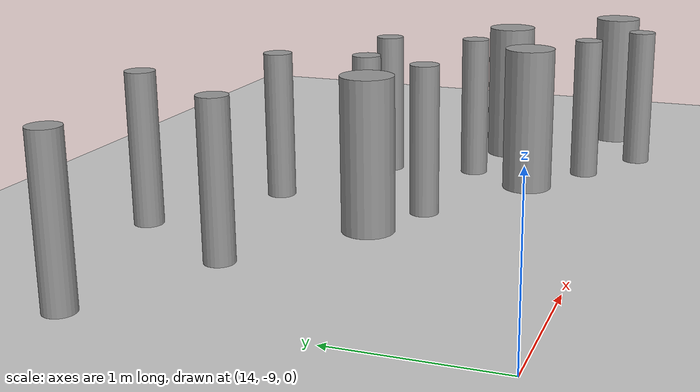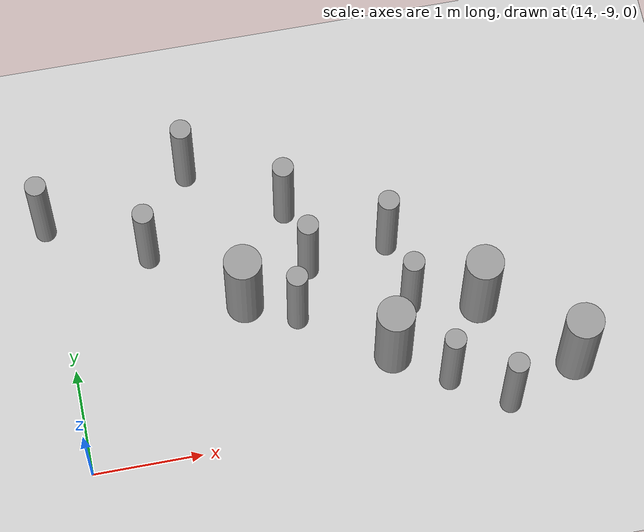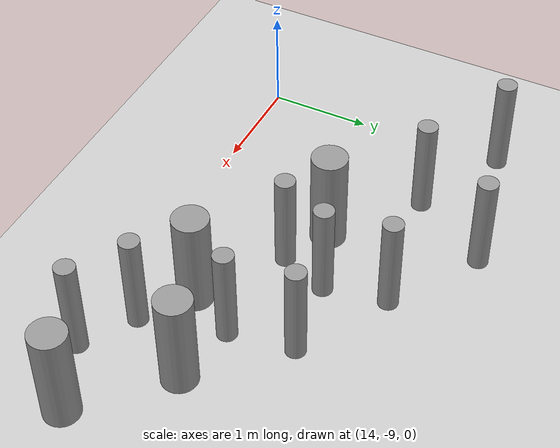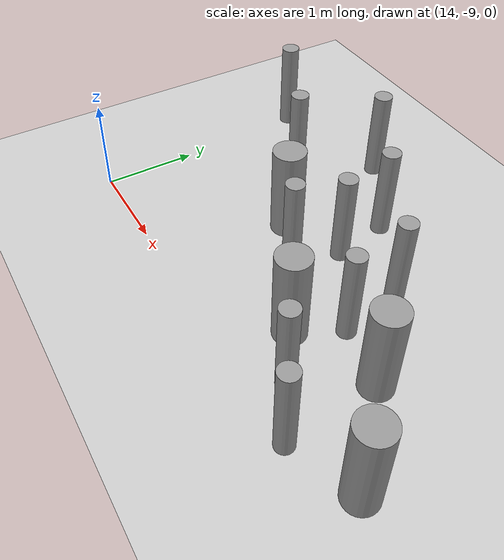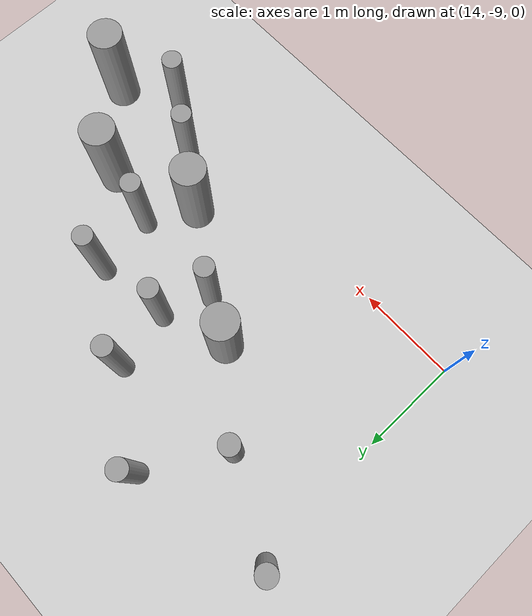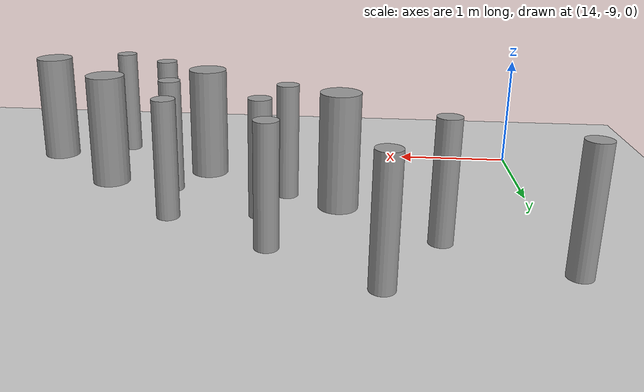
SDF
<sdf version="1.6">
 <world name="default">
  <model name="ground_plane">
   <static>1</static>
   <link name="link">
    <collision name="collision">
     <geometry><plane><normal>0 0 1</normal><size>100 100</size></plane></geometry>
     <surface><friction><ode><mu>100</mu><mu2>50</mu2></ode></friction></surface>
    </collision>
    <visual name="visual">
     <cast_shadows>0</cast_shadows>
     <geometry><plane><normal>0 0 1</normal><size>100 100</size></plane></geometry>
     <material>
      <script><uri>file://media/materials/scripts/gazebo.material</uri><name>Gazebo/Grey</name></script>
     </material>
    </visual>
   </link>
  </model>
  <model name="cyl_wall_clone_clone_1_clone_0">
   <link name="link_0">
    <pose>-2.73893 -0.366465 0 0 -0 0</pose>
    <inertial>
     <mass>0.0374993</mass>
     <inertia>
      <ixx>0.00321281</ixx>
      <ixy>0</ixy>
      <ixz>0</ixz>
      <iyy>0.00321281</iyy>
      <iyz>0</iyz>
      <izz>0.000175774</izz>
     </inertia>
    </inertial>
    <visual name="visual">
     <geometry><cylinder><radius>0.0968661</radius><length>1</length></cylinder></geometry>
     <material>
      <lighting>1</lighting>
      <script><uri>file://media/materials/scripts/gazebo.material</uri><name>Gazebo/Grey</name></script>
      <ambient>0.3 0.3 0.3 1</ambient>
      <diffuse>0.7 0.7 0.7 1</diffuse>
      <specular>0.01 0.01 0.01 1</specular>
      <emissive>0 0 0 1</emissive>
     </material>
    </visual>
    <collision name="collision">
     <geometry><cylinder><radius>0.096866</radius><length>1</length></cylinder></geometry>
     <surface>
      <friction>
       <ode><mu>1</mu><mu2>1</mu2><fdir1>0 0 0</fdir1><slip1>0</slip1><slip2>0</slip2></ode>
       <torsional>
        <coefficient>1</coefficient>
        <patch_radius>0</patch_radius>
        <surface_radius>0</surface_radius>
        <use_patch_radius>1</use_patch_radius>
        <ode><slip>0</slip></ode>
       </torsional>
      </friction>
      <bounce><restitution_coefficient>0</restitution_coefficient><threshold>1e+06</threshold></bounce>
      <contact>
       <collide_without_contact>0</collide_without_contact>
       <collide_without_contact_bitmask>1</collide_without_contact_bitmask>
       <collide_bitmask>1</collide_bitmask>
       <ode>
        <soft_cfm>0</soft_cfm>
        <soft_erp>0.2</soft_erp>
        <kp>1e+13</kp>
        <kd>1</kd>
        <max_vel>0.01</max_vel>
        <min_depth>0</min_depth>
       </ode>
       <bullet>
        <split_impulse>1</split_impulse>
        <split_impulse_penetration_threshold>-0.01</split_impulse_penetration_threshold>
        <soft_cfm>0</soft_cfm>
        <soft_erp>0.2</soft_erp>
        <kp>1e+13</kp>
        <kd>1</kd>
       </bullet>
      </contact>
     </surface>
    </collision>
   </link>
   <link name="link_0_clone">
    <pose>-1.73893 0.61877 0 0 -0 0</pose>
    <inertial>
     <mass>0.0374993</mass>
     <inertia>
      <ixx>0.00321281</ixx>
      <ixy>0</ixy>
      <ixz>0</ixz>
      <iyy>0.00321281</iyy>
      <iyz>0</iyz>
      <izz>0.000175774</izz>
     </inertia>
    </inertial>
    <visual name="visual">
     <geometry><cylinder><radius>0.0968661</radius><length>1</length></cylinder></geometry>
     <material>
      <lighting>1</lighting>
      <script><uri>file://media/materials/scripts/gazebo.material</uri><name>Gazebo/Grey</name></script>
      <ambient>0.3 0.3 0.3 1</ambient>
      <diffuse>0.7 0.7 0.7 1</diffuse>
      <specular>0.01 0.01 0.01 1</specular>
      <emissive>0 0 0 1</emissive>
      <shader type="pixel"/>
     </material>
    </visual>
    <collision name="collision">
     <geometry><cylinder><radius>0.096866</radius><length>1</length></cylinder></geometry>
     <surface>
      <friction>
       <ode><mu>1</mu><mu2>1</mu2><fdir1>0 0 0</fdir1><slip1>0</slip1><slip2>0</slip2></ode>
       <torsional>
        <coefficient>1</coefficient>
        <patch_radius>0</patch_radius>
        <surface_radius>0</surface_radius>
        <use_patch_radius>1</use_patch_radius>
        <ode><slip>0</slip></ode>
       </torsional>
      </friction>
      <bounce><restitution_coefficient>0</restitution_coefficient><threshold>1e+06</threshold></bounce>
      <contact>
       <collide_without_contact>0</collide_without_contact>
       <collide_without_contact_bitmask>1</collide_without_contact_bitmask>
       <collide_bitmask>1</collide_bitmask>
       <ode>
        <soft_cfm>0</soft_cfm>
        <soft_erp>0.2</soft_erp>
        <kp>1e+13</kp>
        <kd>1</kd>
        <max_vel>0.01</max_vel>
        <min_depth>0</min_depth>
       </ode>
       <bullet>
        <split_impulse>1</split_impulse>
        <split_impulse_penetration_threshold>-0.01</split_impulse_penetration_threshold>
        <soft_cfm>0</soft_cfm>
        <soft_erp>0.2</soft_erp>
        <kp>1e+13</kp>
        <kd>1</kd>
       </bullet>
      </contact>
     </surface>
    </collision>
   </link>
   <link name="link_0_clone_clone">
    <pose>-0.327073 0.143919 0 0 -0 0</pose>
    <inertial>
     <mass>0.0374993</mass>
     <inertia>
      <ixx>0.00321281</ixx>
      <ixy>0</ixy>
      <ixz>0</ixz>
      <iyy>0.00321281</iyy>
      <iyz>0</iyz>
      <izz>0.000175774</izz>
     </inertia>
    </inertial>
    <visual name="visual">
     <geometry><cylinder><radius>0.0968661</radius><length>1</length></cylinder></geometry>
     <material>
      <lighting>1</lighting>
      <script><uri>file://media/materials/scripts/gazebo.material</uri><name>Gazebo/Grey</name></script>
      <ambient>0.3 0.3 0.3 1</ambient>
      <diffuse>0.7 0.7 0.7 1</diffuse>
      <specular>0.01 0.01 0.01 1</specular>
      <emissive>0 0 0 1</emissive>
      <shader type="pixel"/>
     </material>
    </visual>
    <collision name="collision">
     <geometry><cylinder><radius>0.096866</radius><length>1</length></cylinder></geometry>
     <surface>
      <friction>
       <ode><mu>1</mu><mu2>1</mu2><fdir1>0 0 0</fdir1><slip1>0</slip1><slip2>0</slip2></ode>
       <torsional>
        <coefficient>1</coefficient>
        <patch_radius>0</patch_radius>
        <surface_radius>0</surface_radius>
        <use_patch_radius>1</use_patch_radius>
        <ode><slip>0</slip></ode>
       </torsional>
      </friction>
      <bounce><restitution_coefficient>0</restitution_coefficient><threshold>1e+06</threshold></bounce>
      <contact>
       <collide_without_contact>0</collide_without_contact>
       <collide_without_contact_bitmask>1</collide_without_contact_bitmask>
       <collide_bitmask>1</collide_bitmask>
       <ode>
        <soft_cfm>0</soft_cfm>
        <soft_erp>0.2</soft_erp>
        <kp>1e+13</kp>
        <kd>1</kd>
        <max_vel>0.01</max_vel>
        <min_depth>0</min_depth>
       </ode>
       <bullet>
        <split_impulse>1</split_impulse>
        <split_impulse_penetration_threshold>-0.01</split_impulse_penetration_threshold>
        <soft_cfm>0</soft_cfm>
        <soft_erp>0.2</soft_erp>
        <kp>1e+13</kp>
        <kd>1</kd>
       </bullet>
      </contact>
     </surface>
    </collision>
   </link>
   <link name="link_0_clone_clone_0">
    <pose>1.26107 -0.419359 0 0 -0 0</pose>
    <inertial>
     <mass>0.0374993</mass>
     <inertia>
      <ixx>0.00321281</ixx>
      <ixy>0</ixy>
      <ixz>0</ixz>
      <iyy>0.00321281</iyy>
      <iyz>0</iyz>
      <izz>0.000175774</izz>
     </inertia>
    </inertial>
    <visual name="visual">
     <geometry><cylinder><radius>0.0968661</radius><length>1</length></cylinder></geometry>
     <material>
      <lighting>1</lighting>
      <script><uri>file://media/materials/scripts/gazebo.material</uri><name>Gazebo/Grey</name></script>
      <ambient>0.3 0.3 0.3 1</ambient>
      <diffuse>0.7 0.7 0.7 1</diffuse>
      <specular>0.01 0.01 0.01 1</specular>
      <emissive>0 0 0 1</emissive>
      <shader type="pixel"/>
     </material>
    </visual>
    <collision name="collision">
     <geometry><cylinder><radius>0.096866</radius><length>1</length></cylinder></geometry>
     <surface>
      <friction>
       <ode><mu>1</mu><mu2>1</mu2><fdir1>0 0 0</fdir1><slip1>0</slip1><slip2>0</slip2></ode>
       <torsional>
        <coefficient>1</coefficient>
        <patch_radius>0</patch_radius>
        <surface_radius>0</surface_radius>
        <use_patch_radius>1</use_patch_radius>
        <ode><slip>0</slip></ode>
       </torsional>
      </friction>
      <bounce><restitution_coefficient>0</restitution_coefficient><threshold>1e+06</threshold></bounce>
      <contact>
       <collide_without_contact>0</collide_without_contact>
       <collide_without_contact_bitmask>1</collide_without_contact_bitmask>
       <collide_bitmask>1</collide_bitmask>
       <ode>
        <soft_cfm>0</soft_cfm>
        <soft_erp>0.2</soft_erp>
        <kp>1e+13</kp>
        <kd>1</kd>
        <max_vel>0.01</max_vel>
        <min_depth>0</min_depth>
       </ode>
       <bullet>
        <split_impulse>1</split_impulse>
        <split_impulse_penetration_threshold>-0.01</split_impulse_penetration_threshold>
        <soft_cfm>0</soft_cfm>
        <soft_erp>0.2</soft_erp>
        <kp>1e+13</kp>
        <kd>1</kd>
       </bullet>
      </contact>
     </surface>
    </collision>
   </link>
   <link name="link_0_clone_clone_1">
    <pose>-1.73893 -0.277168 0 0 -0 0</pose>
    <inertial>
     <mass>0.0374993</mass>
     <inertia>
      <ixx>0.00321281</ixx>
      <ixy>0</ixy>
      <ixz>0</ixz>
      <iyy>0.00321281</iyy>
      <iyz>0</iyz>
      <izz>0.000175774</izz>
     </inertia>
    </inertial>
    <visual name="visual">
     <geometry><cylinder><radius>0.0968661</radius><length>1</length></cylinder></geometry>
     <material>
      <lighting>1</lighting>
      <script><uri>file://media/materials/scripts/gazebo.material</uri><name>Gazebo/Grey</name></script>
      <ambient>0.3 0.3 0.3 1</ambient>
      <diffuse>0.7 0.7 0.7 1</diffuse>
      <specular>0.01 0.01 0.01 1</specular>
      <emissive>0 0 0 1</emissive>
      <shader type="pixel"/>
     </material>
    </visual>
    <collision name="collision">
     <geometry><cylinder><radius>0.096866</radius><length>1</length></cylinder></geometry>
     <surface>
      <friction>
       <ode><mu>1</mu><mu2>1</mu2><fdir1>0 0 0</fdir1><slip1>0</slip1><slip2>0</slip2></ode>
       <torsional>
        <coefficient>1</coefficient>
        <patch_radius>0</patch_radius>
        <surface_radius>0</surface_radius>
        <use_patch_radius>1</use_patch_radius>
        <ode><slip>0</slip></ode>
       </torsional>
      </friction>
      <bounce><restitution_coefficient>0</restitution_coefficient><threshold>1e+06</threshold></bounce>
      <contact>
       <collide_without_contact>0</collide_without_contact>
       <collide_without_contact_bitmask>1</collide_without_contact_bitmask>
       <collide_bitmask>1</collide_bitmask>
       <ode>
        <soft_cfm>0</soft_cfm>
        <soft_erp>0.2</soft_erp>
        <kp>1e+13</kp>
        <kd>1</kd>
        <max_vel>0.01</max_vel>
        <min_depth>0</min_depth>
       </ode>
       <bullet>
        <split_impulse>1</split_impulse>
        <split_impulse_penetration_threshold>-0.01</split_impulse_penetration_threshold>
        <soft_cfm>0</soft_cfm>
        <soft_erp>0.2</soft_erp>
        <kp>1e+13</kp>
        <kd>1</kd>
       </bullet>
      </contact>
     </surface>
    </collision>
   </link>
   <link name="link_0_clone_clone_2">
    <pose>-0.738934 0.593961 0 0 -0 0</pose>
    <inertial>
     <mass>0.0374993</mass>
     <inertia>
      <ixx>0.00321281</ixx>
      <ixy>0</ixy>
      <ixz>0</ixz>
      <iyy>0.00321281</iyy>
      <iyz>0</iyz>
      <izz>0.000175774</izz>
     </inertia>
    </inertial>
    <visual name="visual">
     <geometry><cylinder><radius>0.0968661</radius><length>1</length></cylinder></geometry>
     <material>
      <lighting>1</lighting>
      <script><uri>file://media/materials/scripts/gazebo.material</uri><name>Gazebo/Grey</name></script>
      <ambient>0.3 0.3 0.3 1</ambient>
      <diffuse>0.7 0.7 0.7 1</diffuse>
      <specular>0.01 0.01 0.01 1</specular>
      <emissive>0 0 0 1</emissive>
      <shader type="pixel"/>
     </material>
    </visual>
    <collision name="collision">
     <geometry><cylinder><radius>0.096866</radius><length>1</length></cylinder></geometry>
     <surface>
      <friction>
       <ode><mu>1</mu><mu2>1</mu2><fdir1>0 0 0</fdir1><slip1>0</slip1><slip2>0</slip2></ode>
       <torsional>
        <coefficient>1</coefficient>
        <patch_radius>0</patch_radius>
        <surface_radius>0</surface_radius>
        <use_patch_radius>1</use_patch_radius>
        <ode><slip>0</slip></ode>
       </torsional>
      </friction>
      <bounce><restitution_coefficient>0</restitution_coefficient><threshold>1e+06</threshold></bounce>
      <contact>
       <collide_without_contact>0</collide_without_contact>
       <collide_without_contact_bitmask>1</collide_without_contact_bitmask>
       <collide_bitmask>1</collide_bitmask>
       <ode>
        <soft_cfm>0</soft_cfm>
        <soft_erp>0.2</soft_erp>
        <kp>1e+13</kp>
        <kd>1</kd>
        <max_vel>0.01</max_vel>
        <min_depth>0</min_depth>
       </ode>
       <bullet>
        <split_impulse>1</split_impulse>
        <split_impulse_penetration_threshold>-0.01</split_impulse_penetration_threshold>
        <soft_cfm>0</soft_cfm>
        <soft_erp>0.2</soft_erp>
        <kp>1e+13</kp>
        <kd>1</kd>
       </bullet>
      </contact>
     </surface>
    </collision>
   </link>
   <link name="link_0_clone_clone_3">
    <pose>0.261066 0.624849 0 0 -0 0</pose>
    <inertial>
     <mass>0.0374993</mass>
     <inertia>
      <ixx>0.00321281</ixx>
      <ixy>0</ixy>
      <ixz>0</ixz>
      <iyy>0.00321281</iyy>
      <iyz>0</iyz>
      <izz>0.000175774</izz>
     </inertia>
    </inertial>
    <visual name="visual">
     <geometry><cylinder><radius>0.0968661</radius><length>1</length></cylinder></geometry>
     <material>
      <lighting>1</lighting>
      <script><uri>file://media/materials/scripts/gazebo.material</uri><name>Gazebo/Grey</name></script>
      <ambient>0.3 0.3 0.3 1</ambient>
      <diffuse>0.7 0.7 0.7 1</diffuse>
      <specular>0.01 0.01 0.01 1</specular>
      <emissive>0 0 0 1</emissive>
      <shader type="pixel"/>
     </material>
    </visual>
    <collision name="collision">
     <geometry><cylinder><radius>0.096866</radius><length>1</length></cylinder></geometry>
     <surface>
      <friction>
       <ode><mu>1</mu><mu2>1</mu2><fdir1>0 0 0</fdir1><slip1>0</slip1><slip2>0</slip2></ode>
       <torsional>
        <coefficient>1</coefficient>
        <patch_radius>0</patch_radius>
        <surface_radius>0</surface_radius>
        <use_patch_radius>1</use_patch_radius>
        <ode><slip>0</slip></ode>
       </torsional>
      </friction>
      <bounce><restitution_coefficient>0</restitution_coefficient><threshold>1e+06</threshold></bounce>
      <contact>
       <collide_without_contact>0</collide_without_contact>
       <collide_without_contact_bitmask>1</collide_without_contact_bitmask>
       <collide_bitmask>1</collide_bitmask>
       <ode>
        <soft_cfm>0</soft_cfm>
        <soft_erp>0.2</soft_erp>
        <kp>1e+13</kp>
        <kd>1</kd>
        <max_vel>0.01</max_vel>
        <min_depth>0</min_depth>
       </ode>
       <bullet>
        <split_impulse>1</split_impulse>
        <split_impulse_penetration_threshold>-0.01</split_impulse_penetration_threshold>
        <soft_cfm>0</soft_cfm>
        <soft_erp>0.2</soft_erp>
        <kp>1e+13</kp>
        <kd>1</kd>
       </bullet>
      </contact>
     </surface>
    </collision>
   </link>
   <link name="link_0_clone_clone_4">
    <pose>-0.239049 -0.353105 0 0 -0 0</pose>
    <inertial>
     <mass>0.0374993</mass>
     <inertia>
      <ixx>0.00321281</ixx>
      <ixy>0</ixy>
      <ixz>0</ixz>
      <iyy>0.00321281</iyy>
      <iyz>0</iyz>
      <izz>0.000175774</izz>
     </inertia>
    </inertial>
    <visual name="visual">
     <geometry><cylinder><radius>0.0968661</radius><length>1</length></cylinder></geometry>
     <material>
      <lighting>1</lighting>
      <script><uri>file://media/materials/scripts/gazebo.material</uri><name>Gazebo/Grey</name></script>
      <ambient>0.3 0.3 0.3 1</ambient>
      <diffuse>0.7 0.7 0.7 1</diffuse>
      <specular>0.01 0.01 0.01 1</specular>
      <emissive>0 0 0 1</emissive>
      <shader type="pixel"/>
     </material>
    </visual>
    <collision name="collision">
     <geometry><cylinder><radius>0.096866</radius><length>1</length></cylinder></geometry>
     <surface>
      <friction>
       <ode><mu>1</mu><mu2>1</mu2><fdir1>0 0 0</fdir1><slip1>0</slip1><slip2>0</slip2></ode>
       <torsional>
        <coefficient>1</coefficient>
        <patch_radius>0</patch_radius>
        <surface_radius>0</surface_radius>
        <use_patch_radius>1</use_patch_radius>
        <ode><slip>0</slip></ode>
       </torsional>
      </friction>
      <bounce><restitution_coefficient>0</restitution_coefficient><threshold>1e+06</threshold></bounce>
      <contact>
       <collide_without_contact>0</collide_without_contact>
       <collide_without_contact_bitmask>1</collide_without_contact_bitmask>
       <collide_bitmask>1</collide_bitmask>
       <ode>
        <soft_cfm>0</soft_cfm>
        <soft_erp>0.2</soft_erp>
        <kp>1e+13</kp>
        <kd>1</kd>
        <max_vel>0.01</max_vel>
        <min_depth>0</min_depth>
       </ode>
       <bullet>
        <split_impulse>1</split_impulse>
        <split_impulse_penetration_threshold>-0.01</split_impulse_penetration_threshold>
        <soft_cfm>0</soft_cfm>
        <soft_erp>0.2</soft_erp>
        <kp>1e+13</kp>
        <kd>1</kd>
       </bullet>
      </contact>
     </surface>
    </collision>
   </link>
   <link name="link_0_clone_clone_5">
    <pose>0.672792 0.143919 0 0 -0 0</pose>
    <inertial>
     <mass>0.0374993</mass>
     <inertia>
      <ixx>0.00321281</ixx>
      <ixy>0</ixy>
      <ixz>0</ixz>
      <iyy>0.00321281</iyy>
      <iyz>0</iyz>
      <izz>0.000175774</izz>
     </inertia>
    </inertial>
    <visual name="visual">
     <geometry><cylinder><radius>0.0968661</radius><length>1</length></cylinder></geometry>
     <material>
      <lighting>1</lighting>
      <script><uri>file://media/materials/scripts/gazebo.material</uri><name>Gazebo/Grey</name></script>
      <ambient>0.3 0.3 0.3 1</ambient>
      <diffuse>0.7 0.7 0.7 1</diffuse>
      <specular>0.01 0.01 0.01 1</specular>
      <emissive>0 0 0 1</emissive>
      <shader type="pixel"/>
     </material>
    </visual>
    <collision name="collision">
     <geometry><cylinder><radius>0.096866</radius><length>1</length></cylinder></geometry>
     <surface>
      <friction>
       <ode><mu>1</mu><mu2>1</mu2><fdir1>0 0 0</fdir1><slip1>0</slip1><slip2>0</slip2></ode>
       <torsional>
        <coefficient>1</coefficient>
        <patch_radius>0</patch_radius>
        <surface_radius>0</surface_radius>
        <use_patch_radius>1</use_patch_radius>
        <ode><slip>0</slip></ode>
       </torsional>
      </friction>
      <bounce><restitution_coefficient>0</restitution_coefficient><threshold>1e+06</threshold></bounce>
      <contact>
       <collide_without_contact>0</collide_without_contact>
       <collide_without_contact_bitmask>1</collide_without_contact_bitmask>
       <collide_bitmask>1</collide_bitmask>
       <ode>
        <soft_cfm>0</soft_cfm>
        <soft_erp>0.2</soft_erp>
        <kp>1e+13</kp>
        <kd>1</kd>
        <max_vel>0.01</max_vel>
        <min_depth>0</min_depth>
       </ode>
       <bullet>
        <split_impulse>1</split_impulse>
        <split_impulse_penetration_threshold>-0.01</split_impulse_penetration_threshold>
        <soft_cfm>0</soft_cfm>
        <soft_erp>0.2</soft_erp>
        <kp>1e+13</kp>
        <kd>1</kd>
       </bullet>
      </contact>
     </surface>
    </collision>
   </link>
   <link name="link_0_clone_clone_6">
    <pose>1.84596 -0.433423 0 0 -0 0</pose>
    <inertial>
     <mass>0.0374993</mass>
     <inertia>
      <ixx>0.00321281</ixx>
      <ixy>0</ixy>
      <ixz>0</ixz>
      <iyy>0.00321281</iyy>
      <iyz>0</iyz>
      <izz>0.000175774</izz>
     </inertia>
    </inertial>
    <visual name="visual">
     <geometry><cylinder><radius>0.0968661</radius><length>1</length></cylinder></geometry>
     <material>
      <lighting>1</lighting>
      <script><uri>file://media/materials/scripts/gazebo.material</uri><name>Gazebo/Grey</name></script>
      <ambient>0.3 0.3 0.3 1</ambient>
      <diffuse>0.7 0.7 0.7 1</diffuse>
      <specular>0.01 0.01 0.01 1</specular>
      <emissive>0 0 0 1</emissive>
      <shader type="pixel"/>
     </material>
    </visual>
    <collision name="collision">
     <geometry><cylinder><radius>0.096866</radius><length>1</length></cylinder></geometry>
     <surface>
      <friction>
       <ode><mu>1</mu><mu2>1</mu2><fdir1>0 0 0</fdir1><slip1>0</slip1><slip2>0</slip2></ode>
       <torsional>
        <coefficient>1</coefficient>
        <patch_radius>0</patch_radius>
        <surface_radius>0</surface_radius>
        <use_patch_radius>1</use_patch_radius>
        <ode><slip>0</slip></ode>
       </torsional>
      </friction>
      <bounce><restitution_coefficient>0</restitution_coefficient><threshold>1e+06</threshold></bounce>
      <contact>
       <collide_without_contact>0</collide_without_contact>
       <collide_without_contact_bitmask>1</collide_without_contact_bitmask>
       <collide_bitmask>1</collide_bitmask>
       <ode>
        <soft_cfm>0</soft_cfm>
        <soft_erp>0.2</soft_erp>
        <kp>1e+13</kp>
        <kd>1</kd>
        <max_vel>0.01</max_vel>
        <min_depth>0</min_depth>
       </ode>
       <bullet>
        <split_impulse>1</split_impulse>
        <split_impulse_penetration_threshold>-0.01</split_impulse_penetration_threshold>
        <soft_cfm>0</soft_cfm>
        <soft_erp>0.2</soft_erp>
        <kp>1e+13</kp>
        <kd>1</kd>
       </bullet>
      </contact>
     </surface>
    </collision>
   </link>
   <link name="link_1">
    <pose>-0.738934 -0.397931 0 0 -0 0</pose>
    <inertial>
     <mass>0.117398</mass>
     <inertia>
      <ixx>0.0106445</ixx>
      <ixy>0</ixy>
      <ixz>0</ixz>
      <iyy>0.0106445</iyy>
      <iyz>0</iyz>
      <izz>0.00172278</izz>
     </inertia>
    </inertial>
    <visual name="visual">
     <geometry><cylinder><radius>0.171317</radius><length>1</length></cylinder></geometry>
     <material>
      <lighting>1</lighting>
      <script><uri>file://media/materials/scripts/gazebo.material</uri><name>Gazebo/Grey</name></script>
      <ambient>0.3 0.3 0.3 1</ambient>
      <diffuse>0.7 0.7 0.7 1</diffuse>
      <specular>0.01 0.01 0.01 1</specular>
      <emissive>0 0 0 1</emissive>
     </material>
    </visual>
    <collision name="collision">
     <geometry><cylinder><radius>0.171317</radius><length>1</length></cylinder></geometry>
     <surface>
      <friction>
       <ode><mu>1</mu><mu2>1</mu2><fdir1>0 0 0</fdir1><slip1>0</slip1><slip2>0</slip2></ode>
       <torsional>
        <coefficient>1</coefficient>
        <patch_radius>0</patch_radius>
        <surface_radius>0</surface_radius>
        <use_patch_radius>1</use_patch_radius>
        <ode><slip>0</slip></ode>
       </torsional>
      </friction>
      <bounce><restitution_coefficient>0</restitution_coefficient><threshold>1e+06</threshold></bounce>
      <contact>
       <collide_without_contact>0</collide_without_contact>
       <collide_without_contact_bitmask>1</collide_without_contact_bitmask>
       <collide_bitmask>1</collide_bitmask>
       <ode>
        <soft_cfm>0</soft_cfm>
        <soft_erp>0.2</soft_erp>
        <kp>1e+13</kp>
        <kd>1</kd>
        <max_vel>0.01</max_vel>
        <min_depth>0</min_depth>
       </ode>
       <bullet>
        <split_impulse>1</split_impulse>
        <split_impulse_penetration_threshold>-0.01</split_impulse_penetration_threshold>
        <soft_cfm>0</soft_cfm>
        <soft_erp>0.2</soft_erp>
        <kp>1e+13</kp>
        <kd>1</kd>
       </bullet>
      </contact>
     </surface>
    </collision>
   </link>
   <link name="link_1_clone">
    <pose>0.697784 -0.380861 0 0 -0 0</pose>
    <inertial>
     <mass>0.117398</mass>
     <inertia>
      <ixx>0.0106445</ixx>
      <ixy>0</ixy>
      <ixz>0</ixz>
      <iyy>0.0106445</iyy>
      <iyz>0</iyz>
      <izz>0.00172278</izz>
     </inertia>
    </inertial>
    <visual name="visual">
     <geometry><cylinder><radius>0.171317</radius><length>1</length></cylinder></geometry>
     <material>
      <lighting>1</lighting>
      <script><uri>file://media/materials/scripts/gazebo.material</uri><name>Gazebo/Grey</name></script>
      <ambient>0.3 0.3 0.3 1</ambient>
      <diffuse>0.7 0.7 0.7 1</diffuse>
      <specular>0.01 0.01 0.01 1</specular>
      <emissive>0 0 0 1</emissive>
      <shader type="pixel"/>
     </material>
    </visual>
    <collision name="collision">
     <geometry><cylinder><radius>0.171317</radius><length>1</length></cylinder></geometry>
     <surface>
      <friction>
       <ode><mu>1</mu><mu2>1</mu2><fdir1>0 0 0</fdir1><slip1>0</slip1><slip2>0</slip2></ode>
       <torsional>
        <coefficient>1</coefficient>
        <patch_radius>0</patch_radius>
        <surface_radius>0</surface_radius>
        <use_patch_radius>1</use_patch_radius>
        <ode><slip>0</slip></ode>
       </torsional>
      </friction>
      <bounce><restitution_coefficient>0</restitution_coefficient><threshold>1e+06</threshold></bounce>
      <contact>
       <collide_without_contact>0</collide_without_contact>
       <collide_without_contact_bitmask>1</collide_without_contact_bitmask>
       <collide_bitmask>1</collide_bitmask>
       <ode>
        <soft_cfm>0</soft_cfm>
        <soft_erp>0.2</soft_erp>
        <kp>1e+13</kp>
        <kd>1</kd>
        <max_vel>0.01</max_vel>
        <min_depth>0</min_depth>
       </ode>
       <bullet>
        <split_impulse>1</split_impulse>
        <split_impulse_penetration_threshold>-0.01</split_impulse_penetration_threshold>
        <soft_cfm>0</soft_cfm>
        <soft_erp>0.2</soft_erp>
        <kp>1e+13</kp>
        <kd>1</kd>
       </bullet>
      </contact>
     </surface>
    </collision>
   </link>
   <link name="link_1_clone_0">
    <pose>1.26107 0.358974 0 0 -0 0</pose>
    <inertial>
     <mass>0.117398</mass>
     <inertia>
      <ixx>0.0106445</ixx>
      <ixy>0</ixy>
      <ixz>0</ixz>
      <iyy>0.0106445</iyy>
      <iyz>0</iyz>
      <izz>0.00172278</izz>
     </inertia>
    </inertial>
    <visual name="visual">
     <geometry><cylinder><radius>0.171317</radius><length>1</length></cylinder></geometry>
     <material>
      <lighting>1</lighting>
      <script><uri>file://media/materials/scripts/gazebo.material</uri><name>Gazebo/Grey</name></script>
      <ambient>0.3 0.3 0.3 1</ambient>
      <diffuse>0.7 0.7 0.7 1</diffuse>
      <specular>0.01 0.01 0.01 1</specular>
      <emissive>0 0 0 1</emissive>
      <shader type="pixel"/>
     </material>
    </visual>
    <collision name="collision">
     <geometry><cylinder><radius>0.171317</radius><length>1</length></cylinder></geometry>
     <surface>
      <friction>
       <ode><mu>1</mu><mu2>1</mu2><fdir1>0 0 0</fdir1><slip1>0</slip1><slip2>0</slip2></ode>
       <torsional>
        <coefficient>1</coefficient>
        <patch_radius>0</patch_radius>
        <surface_radius>0</surface_radius>
        <use_patch_radius>1</use_patch_radius>
        <ode><slip>0</slip></ode>
       </torsional>
      </friction>
      <bounce><restitution_coefficient>0</restitution_coefficient><threshold>1e+06</threshold></bounce>
      <contact>
       <collide_without_contact>0</collide_without_contact>
       <collide_without_contact_bitmask>1</collide_without_contact_bitmask>
       <collide_bitmask>1</collide_bitmask>
       <ode>
        <soft_cfm>0</soft_cfm>
        <soft_erp>0.2</soft_erp>
        <kp>1e+13</kp>
        <kd>1</kd>
        <max_vel>0.01</max_vel>
        <min_depth>0</min_depth>
       </ode>
       <bullet>
        <split_impulse>1</split_impulse>
        <split_impulse_penetration_threshold>-0.01</split_impulse_penetration_threshold>
        <soft_cfm>0</soft_cfm>
        <soft_erp>0.2</soft_erp>
        <kp>1e+13</kp>
        <kd>1</kd>
       </bullet>
      </contact>
     </surface>
    </collision>
   </link>
   <link name="link_1_clone_1">
    <pose>2.26107 0.143919 0 0 -0 0</pose>
    <inertial>
     <mass>0.117398</mass>
     <inertia>
      <ixx>0.0106445</ixx>
      <ixy>0</ixy>
      <ixz>0</ixz>
      <iyy>0.0106445</iyy>
      <iyz>0</iyz>
      <izz>0.00172278</izz>
     </inertia>
    </inertial>
    <visual name="visual">
     <geometry><cylinder><radius>0.171317</radius><length>1</length></cylinder></geometry>
     <material>
      <lighting>1</lighting>
      <script><uri>file://media/materials/scripts/gazebo.material</uri><name>Gazebo/Grey</name></script>
      <ambient>0.3 0.3 0.3 1</ambient>
      <diffuse>0.7 0.7 0.7 1</diffuse>
      <specular>0.01 0.01 0.01 1</specular>
      <emissive>0 0 0 1</emissive>
      <shader type="pixel"/>
     </material>
    </visual>
    <collision name="collision">
     <geometry><cylinder><radius>0.171317</radius><length>1</length></cylinder></geometry>
     <surface>
      <friction>
       <ode><mu>1</mu><mu2>1</mu2><fdir1>0 0 0</fdir1><slip1>0</slip1><slip2>0</slip2></ode>
       <torsional>
        <coefficient>1</coefficient>
        <patch_radius>0</patch_radius>
        <surface_radius>0</surface_radius>
        <use_patch_radius>1</use_patch_radius>
        <ode><slip>0</slip></ode>
       </torsional>
      </friction>
      <bounce><restitution_coefficient>0</restitution_coefficient><threshold>1e+06</threshold></bounce>
      <contact>
       <collide_without_contact>0</collide_without_contact>
       <collide_without_contact_bitmask>1</collide_without_contact_bitmask>
       <collide_bitmask>1</collide_bitmask>
       <ode>
        <soft_cfm>0</soft_cfm>
        <soft_erp>0.2</soft_erp>
        <kp>1e+13</kp>
        <kd>1</kd>
        <max_vel>0.01</max_vel>
        <min_depth>0</min_depth>
       </ode>
       <bullet>
        <split_impulse>1</split_impulse>
        <split_impulse_penetration_threshold>-0.01</split_impulse_penetration_threshold>
        <soft_cfm>0</soft_cfm>
        <soft_erp>0.2</soft_erp>
        <kp>1e+13</kp>
        <kd>1</kd>
       </bullet>
      </contact>
     </surface>
    </collision>
   </link>
   <static>1</static>
   <pose>16.4597 -7.68982 0.5 0 0 -0.549185</pose>
  </model>
 </world>
</sdf>
